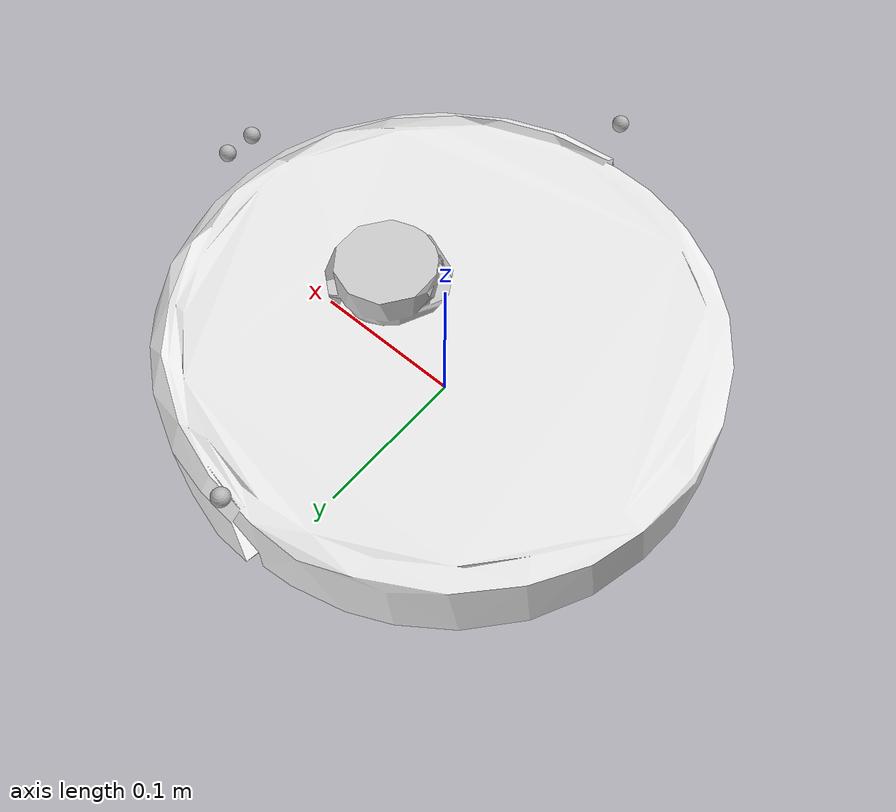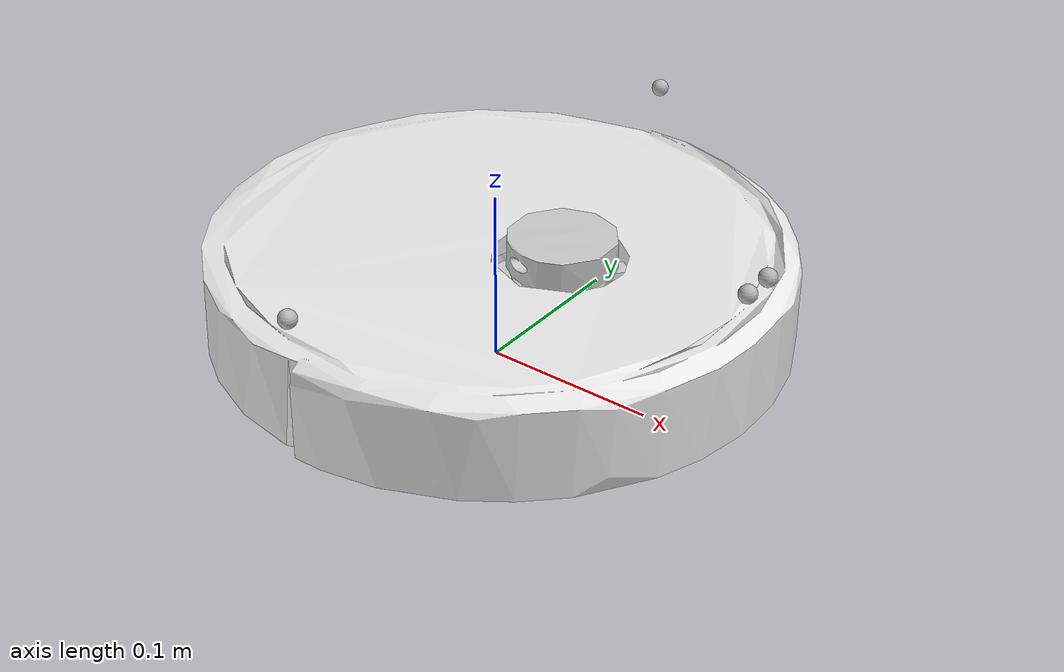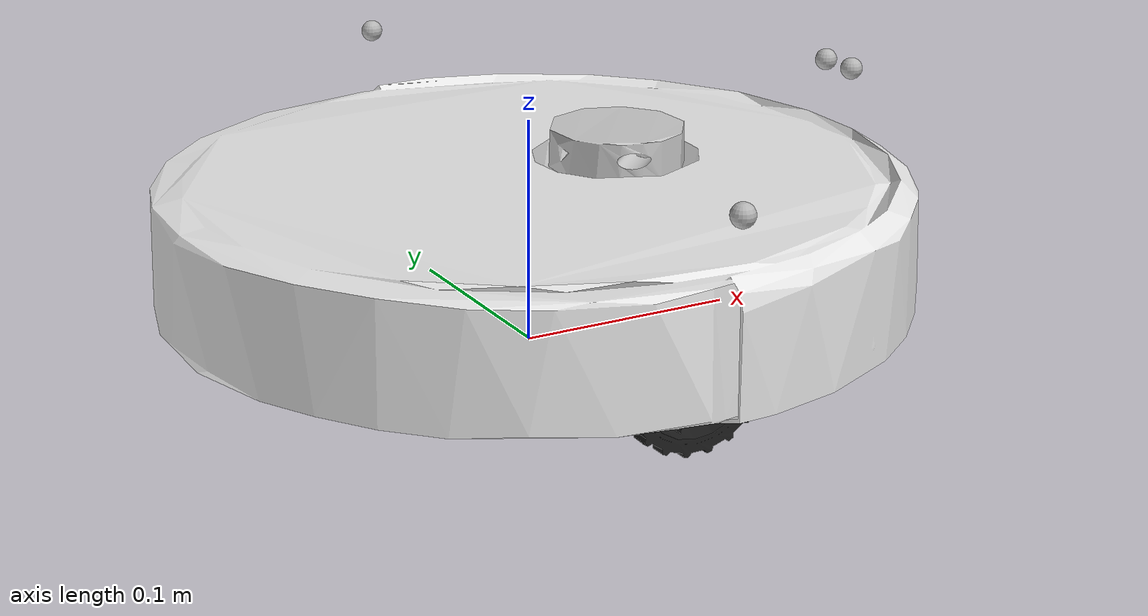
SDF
<sdf version='1.6'>
  <model name='rvc'>
    <link name='base_link'>
      <pose frame=''>0 0 0 0 -0 0</pose>
      <inertial>
        <pose frame=''>0.040385 0 0.047692 0 -0 0</pose>
        <mass>2.6</mass>
        <inertia>
          <ixx>0.0175781</ixx>
          <ixy>0</ixy>
          <ixz>-3.23077e-05</ixz>
          <iyy>0.0175827</iyy>
          <iyz>0</iyz>
          <izz>0.0327389</izz>
        </inertia>
      </inertial>
      <collision name='base_link_fixed_joint_lump__boby_collision_collision'>
        <pose frame=''>0 0 0.045 0 -0 0</pose>
        <geometry>
          <cylinder>
            <length>0.07</length>
            <radius>0.16495</radius>
          </cylinder>
        </geometry>
      </collision>
      <collision name='base_link_fixed_joint_lump__front_omniwheel_collision_1'>
        <pose frame=''>0.11 0 0.009 0 -0 0</pose>
        <geometry>
          <sphere>
            <radius>0.009</radius>
          </sphere>
        </geometry>
      </collision>
      <collision name='base_link_fixed_joint_lump__back_omniwheel_collision_2'>
        <pose frame=''>-0.11 0 0.009 0 -0 0</pose>
        <geometry>
          <sphere>
            <radius>0.008</radius>
          </sphere>
        </geometry>
      </collision>
      <collision name='base_link_fixed_joint_lump__collision_collision_3'>
        <pose frame=''>0.045 0 0.08 0 -0 0</pose>
        <geometry>
          <cylinder>
            <length>0.017</length>
            <radius>0.029</radius>
          </cylinder>
        </geometry>
      </collision>
      <visual name='base_link_fixed_joint_lump__body_visual'>
        <pose frame=''>0 0 0.045 0 -0 0</pose>
        <geometry>
          <mesh>
            <scale>1 1 1</scale>
            <uri>model://sweeper_description/meshes/RobotBody.dae</uri>
          </mesh>
        </geometry>
        <material>
          <script>
            <name>Gazebo/White</name>
            <uri>file://media/materials/scripts/gazebo.material</uri>
          </script>
        </material>
      </visual>
      <visual name='base_link_fixed_joint_lump__recevier_visual_1'>
        <pose frame=''>0.161659 0.009711 0.105 0 -0 0.06</pose>
        <geometry>
          <sphere>
            <radius>0.005</radius>
          </sphere>
        </geometry>
      </visual>
      <visual name='base_link_fixed_joint_lump__recevier_visual_2'>
        <pose frame=''>0.161659 -0.009711 0.105 0 0 -0.06</pose>
        <geometry>
          <sphere>
            <radius>0.005</radius>
          </sphere>
        </geometry>
      </visual>
      <visual name='base_link_fixed_joint_lump__recevier_visual_3'>
        <pose frame=''>0 0.16195 0.105 0 -0 1.57079</pose>
        <geometry>
          <sphere>
            <radius>0.005</radius>
          </sphere>
        </geometry>
      </visual>
      <visual name='base_link_fixed_joint_lump__recevier_visual_4'>
        <pose frame=''>0 -0.16195 0.105 0 0 -1.57079</pose>
        <geometry>
          <sphere>
            <radius>0.005</radius>
          </sphere>
        </geometry>
      </visual>
      <visual name='base_link_fixed_joint_lump__laser_visual_visual_5'>
        <pose frame=''>0.045 0 0.08 0 -0 0</pose>
        <geometry>
          <mesh>
            <scale>1 1 1</scale>
            <uri>model://sweeper_description/meshes/RobotLidar.dae</uri>
          </mesh>
        </geometry>
      </visual>
      <velocity_decay/>
      <sensor name='main_bumper' type='contact'>
        <contact>
          <collision>base_link_fixed_joint_lump__boby_collision_collision</collision>
          <topic>__default_topic__</topic>
        </contact>
        <plugin name='gazebo_ros_bumper_controller' filename='libgazebo_ros_bumper.so'>
          <selfCollide>true</selfCollide>
          <alwaysOn>true</alwaysOn>
          <updateRate>50.0</updateRate>
          <bumperTopicName>/bumper</bumperTopicName>
          <frameName>base_link</frameName>
        </plugin>
        <pose frame=''>0 0 0.045 0 -0 0</pose>
      </sensor>
      <velocity_decay/>
      <sensor name='ir_front_sensor' type='ray'>
        <visualize>1</visualize>
        <update_rate>20</update_rate>
        <ray>
          <scan>
            <horizontal>
              <samples>10</samples>
              <resolution>1</resolution>
              <min_angle>-0.0872664</min_angle>
              <max_angle>0.0872664</max_angle>
            </horizontal>
          </scan>
          <range>
            <min>0.01</min>
            <max>0.26</max>
            <resolution>0.01</resolution>
          </range>
        </ray>
        <plugin name='gazebo_ros_ir_front_controller' filename='libgazebo_ros_range.so'>
          <gaussianNoise>0.005</gaussianNoise>
          <alwaysOn>true</alwaysOn>
          <updateRate>20</updateRate>
          <topicName>/ir/front</topicName>
          <frameName>base_link</frameName>
          <radiation>ir</radiation>
          <fov>0.174532777778</fov>
        </plugin>
        <pose frame=''>0.16495 0 0.045 0 -0 0</pose>
      </sensor>
      <velocity_decay/>
      <sensor name='ir_left_front_sensor' type='ray'>
        <visualize>1</visualize>
        <update_rate>20</update_rate>
        <ray>
          <scan>
            <horizontal>
              <samples>10</samples>
              <resolution>1</resolution>
              <min_angle>-0.0872664</min_angle>
              <max_angle>0.0872664</max_angle>
            </horizontal>
          </scan>
          <range>
            <min>0.01</min>
            <max>0.26</max>
            <resolution>0.01</resolution>
          </range>
        </ray>
        <plugin name='gazebo_ros_ir_left_front_controller' filename='libgazebo_ros_range.so'>
          <gaussianNoise>0.005</gaussianNoise>
          <alwaysOn>true</alwaysOn>
          <updateRate>20</updateRate>
          <topicName>/ir/left_front</topicName>
          <frameName>base_link</frameName>
          <radiation>ir</radiation>
          <fov>0.174532777778</fov>
        </plugin>
        <pose frame=''>0.152394 0.063124 0.045 0 -0 0.392699</pose>
      </sensor>
      <velocity_decay/>
      <sensor name='ir_left_sensor' type='ray'>
        <visualize>1</visualize>
        <update_rate>20</update_rate>
        <ray>
          <scan>
            <horizontal>
              <samples>10</samples>
              <resolution>1</resolution>
              <min_angle>-0.0872664</min_angle>
              <max_angle>0.0872664</max_angle>
            </horizontal>
          </scan>
          <range>
            <min>0.01</min>
            <max>0.26</max>
            <resolution>0.01</resolution>
          </range>
        </ray>
        <plugin name='gazebo_ros_ir_left_controller' filename='libgazebo_ros_range.so'>
          <gaussianNoise>0.005</gaussianNoise>
          <alwaysOn>true</alwaysOn>
          <updateRate>20</updateRate>
          <topicName>/ir/left</topicName>
          <frameName>base_link</frameName>
          <radiation>ir</radiation>
          <fov>0.174532777778</fov>
        </plugin>
        <pose frame=''>0.116637 0.116637 0.045 0 -0 0.785397</pose>
      </sensor>
      <velocity_decay/>
      <velocity_decay/>
      <velocity_decay/>
      <velocity_decay/>
      <velocity_decay/>
      <sensor name='ir_right_front_sensor' type='ray'>
        <visualize>1</visualize>
        <update_rate>20</update_rate>
        <ray>
          <scan>
            <horizontal>
              <samples>10</samples>
              <resolution>1</resolution>
              <min_angle>-0.0872664</min_angle>
              <max_angle>0.0872664</max_angle>
            </horizontal>
          </scan>
          <range>
            <min>0.01</min>
            <max>0.26</max>
            <resolution>0.01</resolution>
          </range>
        </ray>
        <plugin name='gazebo_ros_ir_right_front_controller' filename='libgazebo_ros_range.so'>
          <gaussianNoise>0.005</gaussianNoise>
          <alwaysOn>true</alwaysOn>
          <updateRate>20</updateRate>
          <topicName>/ir/right_front</topicName>
          <frameName>base_link</frameName>
          <radiation>ir</radiation>
          <fov>0.174532777778</fov>
        </plugin>
        <pose frame=''>0.152394 -0.063124 0.045 0 0 -0.392699</pose>
      </sensor>
      <velocity_decay/>
      <sensor name='ir_right_sensor' type='ray'>
        <visualize>1</visualize>
        <update_rate>20</update_rate>
        <ray>
          <scan>
            <horizontal>
              <samples>10</samples>
              <resolution>1</resolution>
              <min_angle>-0.0872664</min_angle>
              <max_angle>0.0872664</max_angle>
            </horizontal>
          </scan>
          <range>
            <min>0.01</min>
            <max>0.26</max>
            <resolution>0.01</resolution>
          </range>
        </ray>
        <plugin name='gazebo_ros_ir_right_controller' filename='libgazebo_ros_range.so'>
          <gaussianNoise>0.005</gaussianNoise>
          <alwaysOn>true</alwaysOn>
          <updateRate>20</updateRate>
          <topicName>/ir/right</topicName>
          <frameName>base_link</frameName>
          <radiation>ir</radiation>
          <fov>0.174532777778</fov>
        </plugin>
        <pose frame=''>0.116637 -0.116637 0.045 0 0 -0.785397</pose>
      </sensor>
      <gravity>1</gravity>
      <velocity_decay/>
      <sensor name='eai_lidar' type='ray'>
        <visualize>0</visualize>
        <update_rate>5</update_rate>
        <ray>
          <scan>
            <horizontal>
              <samples>360</samples>
              <resolution>1</resolution>
              <min_angle>0</min_angle>
              <max_angle>6.28318</max_angle>
            </horizontal>
          </scan>
          <range>
            <min>0.1</min>
            <max>8</max>
            <resolution>0.01</resolution>
          </range>
          <noise>
            <type>gaussian</type>
            <mean>0</mean>
            <stddev>0.01</stddev>
          </noise>
        </ray>
        <plugin name='gazebo_ros_lidar_controller' filename='libgazebo_ros_laser.so'>
          <topicName>/laser/scan</topicName>
          <frameName>lidar_link</frameName>
        </plugin>
        <pose frame=''>0.045 0 0.085 0 -0 0</pose>
      </sensor>
    </link>
    <link name='left_wheel'>
      <pose frame=''>0 0.13 0.033 0 -0 0</pose>
      <inertial>
        <pose frame=''>0 0 0 0 -0 0</pose>
        <mass>0.2</mass>
        <inertia>
          <ixx>5.87167e-05</ixx>
          <ixy>0</ixy>
          <ixz>0</ixz>
          <iyy>5.87167e-05</iyy>
          <iyz>0</iyz>
          <izz>0.0001089</izz>
        </inertia>
      </inertial>
      <collision name='left_wheel_fixed_joint_lump__collision_collision'>
        <pose frame=''>0 0 0 0 1.5707 1.5707</pose>
        <geometry>
          <cylinder>
            <length>0.016</length>
            <radius>0.033</radius>
          </cylinder>
        </geometry>
      </collision>
      <visual name='left_wheel_visual'>
        <pose frame=''>0 0 0 0 1.5707 1.5707</pose>
        <geometry>
          <mesh>
            <scale>1 1 1</scale>
            <uri>model://sweeper_description/meshes/RobotWheel.dae</uri>
          </mesh>
        </geometry>
        <material>
          <script>
            <name>Gazebo/Black</name>
            <uri>file://media/materials/scripts/gazebo.material</uri>
          </script>
        </material>
      </visual>
      <gravity>1</gravity>
      <velocity_decay/>
    </link>
    <joint name='left_wheel_joint' type='revolute'>
      <child>left_wheel</child>
      <parent>base_link</parent>
      <axis>
        <xyz>0 1 0</xyz>
        <limit>
          <lower>-1e+16</lower>
          <upper>1e+16</upper>
        </limit>
        <dynamics>
          <spring_reference>0</spring_reference>
          <spring_stiffness>0</spring_stiffness>
        </dynamics>
        <use_parent_model_frame>1</use_parent_model_frame>
      </axis>
    </joint>
    <link name='right_wheel'>
      <pose frame=''>0 -0.13 0.033 0 -0 0</pose>
      <inertial>
        <pose frame=''>0 0 0 0 -0 0</pose>
        <mass>0.2</mass>
        <inertia>
          <ixx>5.87167e-05</ixx>
          <ixy>0</ixy>
          <ixz>0</ixz>
          <iyy>5.87167e-05</iyy>
          <iyz>0</iyz>
          <izz>0.0001089</izz>
        </inertia>
      </inertial>
      <collision name='right_wheel_fixed_joint_lump__collision_collision'>
        <pose frame=''>0 0 0 0 1.5707 1.5707</pose>
        <geometry>
          <cylinder>
            <length>0.016</length>
            <radius>0.033</radius>
          </cylinder>
        </geometry>
      </collision>
      <visual name='right_wheel_visual'>
        <pose frame=''>0 0 0 0 1.5707 1.5707</pose>
        <geometry>
          <mesh>
            <scale>1 1 1</scale>
            <uri>model://sweeper_description/meshes/RobotWheel.dae</uri>
          </mesh>
        </geometry>
        <material>
          <script>
            <name>Gazebo/Black</name>
            <uri>file://media/materials/scripts/gazebo.material</uri>
          </script>
        </material>
      </visual>
      <gravity>1</gravity>
      <velocity_decay/>
    </link>
    <joint name='right_wheel_joint' type='revolute'>
      <child>right_wheel</child>
      <parent>base_link</parent>
      <axis>
        <xyz>0 1 0</xyz>
        <limit>
          <lower>-1e+16</lower>
          <upper>1e+16</upper>
        </limit>
        <dynamics>
          <spring_reference>0</spring_reference>
          <spring_stiffness>0</spring_stiffness>
        </dynamics>
        <use_parent_model_frame>1</use_parent_model_frame>
      </axis>
    </joint>
    <static>0</static>
    <plugin name='gazebo_ros_control' filename='libgazebo_ros_control.so'>
      <robotNamespace>/</robotNamespace>
      <legacyModeNS>true</legacyModeNS>
    </plugin>
  </model>
</sdf>
